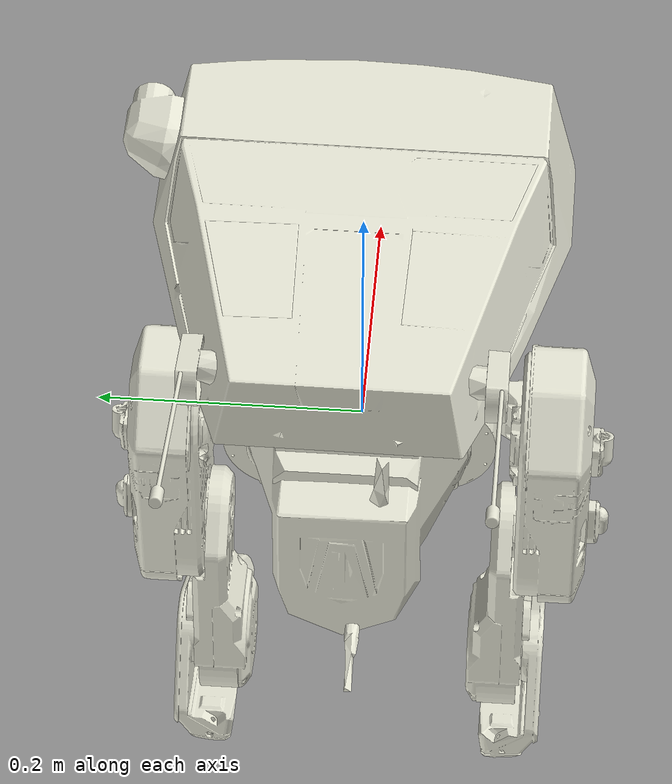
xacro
<?xml version="1.0"?>

<robot name="bdx_v4" xmlns:xacro="http://www.ros.org/wiki/xacro">
    <xacro:arg name="mesh_path" default="file://$(find robot_description)/robots/bdx_v4/mesh" />
    <xacro:include filename="bdx_v4.urdf" />
    <xacro:include filename="ros2_control_real.xacro" />

    <xacro:real_ros2_control />

</robot>

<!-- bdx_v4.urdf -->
<robot name="bdx_v4">

    <material name="black"> <color rgba="0.0 0.0 0.0 1.0"/> </material>
    <material name="white"> <color rgba="1.0 1.0 1.0 1.0"/> </material>
    <material name="red"> <color rgba="0.8 0.0 0.0 1.0"/> </material>
    <material name="yellow"> <color rgba="1.0 1.0 0.0 1.0"/> </material>
    <material name="blue"> <color rgba="0.0 0.0 0.8 1.0"/> </material>
    <material name="green"> <color rgba="0.0 0.8 0.0 1.0"/> </material>
    <material name="orange"> <color rgba="1 0.4235 0.0392 1.0"/> </material>
    <material name="silver"> <color rgba="0.9137 0.9137 0.8471 1.0"/> </material>

    <link name="trunk"/>
    <link name="base_link">
        <inertial>
            <origin xyz="-0.019956547048000001 -9.4562330000000003e-05 0.069185614313999999" rpy="0 0 0"/>
            <mass value="6.6133790757300002"/>
            <inertia ixx="0.039260766863999999" ixy="-0.00012462819199999999" ixz="0.002935471379"
                     iyy="0.081055838429999999" iyz="1.8834257999999999e-05" izz="0.070623365802999993"/>
        </inertial>
        <visual>
            <origin xyz="0 0 0" rpy="0 0 0"/>
            <geometry>
                <mesh filename="package://robot_description/robots/bdx_v4/mesh/base_link.STL"/>
            </geometry>
            <material name="silver"/>
        </visual>
        <collision>
            <origin xyz="0 0 0" rpy="0 0 0"/>
            <geometry>
                <mesh filename="package://robot_description/robots/bdx_v4/mesh/base_link.STL"/>
            </geometry>
        </collision>
    </link>
    <joint name="dummy_joint" type="fixed">
        <parent link="trunk"/>
        <child link="base_link"/>
    </joint>
    <link name="left_hip_yaw_link">
        <inertial>
            <origin xyz="-0.0013704825649999974 0.0047008836579999977 -0.053614463938000005" rpy="0 0 0"/>
            <mass value="0.72758306889699997"/>
            <inertia ixx="0.0011982664849999999" ixy="7.3257500000000001e-06" ixz="-1.7438007000000001e-05"
                     iyy="0.00087218245400000002" iyz="9.8185919999999993e-06" izz="0.00054045132699999995"/>
        </inertial>
        <visual>
            <origin xyz="0 0 0" rpy="0 0 0"/>
            <geometry>
                <mesh filename="package://robot_description/robots/bdx_v4/mesh/left_hip_yaw.STL"/>
            </geometry>
            <material name="silver"/>
        </visual>
    </link>
    <joint name="left_hip_yaw_joint" type="revolute">
        <origin xyz="-0.019800000000000002 0.048750000000000002 0.065100000000000005" rpy="0 0 0"/>
        <parent link="base_link"/>
        <child link="left_hip_yaw_link"/>
        <axis xyz="0 0 1"/>
        <limit lower="-0.349066" upper="0.349066" effort="1000" velocity="100"/>
    </joint>
    <link name="left_hip_roll_link">
        <inertial>
            <origin xyz="0.002434906132 0.031075164804000001 -4.3982000000000003e-08" rpy="0 0 0"/>
            <mass value="0.17816248602099999"/>
            <inertia ixx="0.00022406375199999999" ixy="2.7766400000000001e-06" ixz="4.0480000000000001e-09"
                     iyy="4.8951405000000001e-05" iyz="-1.227e-09" izz="0.000207381101"/>
        </inertial>
        <visual>
            <origin xyz="0 0 0" rpy="0 0 0"/>
            <geometry>
                <mesh filename="package://robot_description/robots/bdx_v4/mesh/left_hip_roll.STL"/>
            </geometry>
            <material name="silver"/>
        </visual>
    </link>
    <joint name="left_hip_roll_joint" type="revolute">
        <origin xyz="0.017800000000000003 0.0054999999999999979 -0.065100000000000005" rpy="0 0 0"/>
        <parent link="left_hip_yaw_link"/>
        <child link="left_hip_roll_link"/>
        <axis xyz="1 0 0"/>
        <limit lower="-0.698132" upper="0.261799" effort="1000" velocity="100"/>
    </joint>
    <link name="left_hip_pitch_link">
        <inertial>
            <origin xyz="-0.001943711844 0.021611905602999998 -0.05843281744" rpy="0 0 0"/>
            <mass value="1.546391155801"/>
            <inertia ixx="0.0068089450609999996" ixy="-1.4453136000000001e-05" ixz="2.7927387000000001e-05"
                     iyy="0.0077723212580000003" iyz="1.6869981000000001e-05" izz="0.0015997177419999999"/>
        </inertial>
        <visual>
            <origin xyz="0 0 0" rpy="0 0 0"/>
            <geometry>
                <mesh filename="package://robot_description/robots/bdx_v4/mesh/left_hip_pitch.STL"/>
            </geometry>
            <material name="silver"/>
        </visual>
    </link>
    <joint name="left_hip_pitch_joint" type="revolute">
        <origin xyz="0.002 0.066700000000000009 0" rpy="0 0 0"/>
        <parent link="left_hip_roll_link"/>
        <child link="left_hip_pitch_link"/>
        <axis xyz="0 1 0"/>
        <limit lower="-0.52359" upper="2.356194" effort="1000" velocity="100"/>
    </joint>
    <link name="left_knee_link">
        <inertial>
            <origin xyz="-0.0052928658590000004 -0.010948343791000001 -0.099493215772999993" rpy="0 0 0"/>
            <mass value="0.84008606801999997"/>
            <inertia ixx="0.0031077569760000002" ixy="2.4678204000000001e-05" ixz="0.00015599091799999999"
                     iyy="0.0035335563340000002" iyz="-0.000120939988" izz="0.00061717738599999998"/>
        </inertial>
        <visual>
            <origin xyz="0 0 0" rpy="0 0 0"/>
            <geometry>
                <mesh filename="package://robot_description/robots/bdx_v4/mesh/left_knee.STL"/>
            </geometry>
            <material name="silver"/>
        </visual>
        <collision>
            <origin xyz="0 0 0" rpy="0 0 0"/>
            <geometry>
                <mesh filename="package://robot_description/robots/bdx_v4/mesh/left_knee.STL"/>
            </geometry>
        </collision>
    </link>
    <joint name="left_knee_joint" type="revolute">
        <origin xyz="0 0 -0.12" rpy="0 0 0"/>
        <parent link="left_hip_pitch_link"/>
        <child link="left_knee_link"/>
        <axis xyz="0 1 0"/>
        <limit lower="-2.321287" upper="0" effort="1000" velocity="100"/>
    </joint>
    <link name="left_ankle_link">
        <inertial>
            <origin xyz="0.021285777794999999 -0.0018934604689999912 -0.037131302197999982" rpy="0 0 0"/>
            <mass value="0.42536362871400002"/>
            <inertia ixx="0.00043347552500000002" ixy="3.7516683e-05" ixz="9.9205912999999994e-05" iyy="0.001268967094"
                     iyz="-7.3035450999999995e-05" izz="0.00097118438400000003"/>
        </inertial>
        <visual>
            <origin xyz="0 0 0" rpy="0 0 0"/>
            <geometry>
                <mesh filename="package://robot_description/robots/bdx_v4/mesh/left_ankle.STL"/>
            </geometry>
            <material name="silver"/>
        </visual>
        <collision>
            <geometry>
                <mesh filename="package://robot_description/robots/bdx_v4/mesh/left_ankle.STL"/>
            </geometry>
        </collision>
    </link>
    <joint name="left_ankle_joint" type="revolute">
        <origin xyz="0 0.0083000000000000018 -0.14000000000000001" rpy="0 0 0"/>
        <parent link="left_knee_link"/>
        <child link="left_ankle_link"/>
        <axis xyz="0 1 0"/>
        <limit lower="-1.39626" upper="1.39626" effort="1000" velocity="100"/>
    </joint>
    <link name="left_foot">
        <inertial>
        <origin xyz="0 0 0" rpy="0 0 0"/>
        <mass value="1e-9"/>
        <inertia ixx="0" ixy="0" ixz="0" iyy="0" iyz="0" izz="0"/>
        </inertial>
    </link>
    <joint name="left_foot_joint" type="fixed">
        <origin xyz="0.025 0.0 -0.08" rpy="0 0 0"/>
        <parent link="left_ankle_link"/>
        <child link="left_foot"/>
        <axis xyz="0 0 0"/>
    </joint>
    <link name="right_hip_yaw_link">
        <inertial>
            <origin xyz="-0.0013603342579999976 -0.0047002975830000016 -0.053616255320000007" rpy="0 0 0"/>
            <mass value="0.72757471832700005"/>
            <inertia ixx="0.0011981470590000001" ixy="-7.198172e-06" ixz="-1.8172661999999999e-05"
                     iyy="0.00087193251399999996" iyz="-9.8259989999999994e-06" izz="0.00054025604299999996"/>
        </inertial>
        <visual>
            <origin xyz="0 0 0" rpy="0 0 0"/>
            <geometry>
                <mesh filename="package://robot_description/robots/bdx_v4/mesh/right_hip_yaw.STL"/>
            </geometry>
            <material name="silver"/>
        </visual>
    </link>
    <joint name="right_hip_yaw_joint" type="revolute">
        <origin xyz="-0.019800000000000002 -0.048750000000000002 0.065100000000000005" rpy="0 0 0"/>
        <parent link="base_link"/>
        <child link="right_hip_yaw_link"/>
        <axis xyz="0 0 1"/>
        <limit lower="-0.349066" upper="0.349066" effort="1000" velocity="100"/>
    </joint>
    <link name="right_hip_roll_link">
        <inertial>
            <origin xyz="0.0024349059750000002 -0.031075318821999993 -6.9957999999999997e-08" rpy="0 0 0"/>
            <mass value="0.17816248882999999"/>
            <inertia ixx="0.000224062441" ixy="-2.7761439999999999e-06" ixz="-4.3610000000000001e-09"
                     iyy="4.8951320999999997e-05" iyz="-5.69e-10" izz="0.00020738011399999999"/>
        </inertial>
        <visual>
            <origin xyz="0 0 0" rpy="0 0 0"/>
            <geometry>
                <mesh filename="package://robot_description/robots/bdx_v4/mesh/right_hip_roll.STL"/>
            </geometry>
            <material name="silver"/>
        </visual>
    </link>
    <joint name="right_hip_roll_joint" type="revolute">
        <origin xyz="0.0178 -0.0054999999999999979 -0.065100000000000005" rpy="0 0 0"/>
        <parent link="right_hip_yaw_link"/>
        <child link="right_hip_roll_link"/>
        <axis xyz="1 0 0"/>
        <limit lower="-0.261799" upper="0.698132" effort="1000" velocity="100"/>
    </joint>
    <link name="right_hip_pitch_link">
        <inertial>
            <origin xyz="-0.0017495255789999999 -0.021683786784999992 -0.059785911971" rpy="0 0 0"/>
            <mass value="1.508634573091"/>
            <inertia ixx="0.0065804438140000003" ixy="1.1502983999999999e-05" ixz="2.2573144999999999e-05"
                     iyy="0.0074799455270000001" iyz="-3.3984170000000002e-06" izz="0.0015198501160000001"/>
        </inertial>
        <visual>
            <origin xyz="0 0 0" rpy="0 0 0"/>
            <geometry>
                <mesh filename="package://robot_description/robots/bdx_v4/mesh/right_hip_pitch.STL"/>
            </geometry>
            <material name="silver"/>
        </visual>
    </link>
    <joint name="right_hip_pitch_joint" type="revolute">
        <origin xyz="0.002 -0.066700000000000009 0" rpy="0 0 0"/>
        <parent link="right_hip_roll_link"/>
        <child link="right_hip_pitch_link"/>
        <axis xyz="0 1 0"/>
        <limit lower="-0.52359" upper="2.356194" effort="1000" velocity="100"/>
    </joint>
    <link name="right_knee_link">
        <inertial>
            <origin xyz="-0.005292586264 0.010948402630000006 -0.099493689787000017" rpy="0 0 0"/>
            <mass value="0.84007571389500002"/>
            <inertia ixx="0.0031077264559999998" ixy="-2.4679593000000001e-05" ixz="0.00015599712700000001"
                     iyy="0.00353351394" iyz="0.000120938625" izz="0.00061717107400000005"/>
        </inertial>
        <visual>
            <origin xyz="0 0 0" rpy="0 0 0"/>
            <geometry>
                <mesh filename="package://robot_description/robots/bdx_v4/mesh/right_knee.STL"/>
            </geometry>
            <material name="silver"/>
        </visual>
        <collision>
            <origin xyz="0 0 0" rpy="0 0 0"/>
            <geometry>
                <mesh filename="package://robot_description/robots/bdx_v4/mesh/right_knee.STL"/>
            </geometry>
        </collision>
    </link>
    <joint name="right_knee_joint" type="revolute">
        <origin xyz="0 0 -0.12" rpy="0 0 0"/>
        <parent link="right_hip_pitch_link"/>
        <child link="right_knee_link"/>
        <axis xyz="0 1 0"/>
        <limit lower="-2.321287" upper="0" effort="1000" velocity="100"/>
    </joint>
    <link name="right_ankle_link">
        <inertial>
            <origin xyz="0.021197320038000001 0.0019986848659999945 -0.037122430854999999" rpy="0 0 0"/>
            <mass value="0.42488534599799999"/>
            <inertia ixx="0.000433924631" ixy="-3.7258127999999998e-05" ixz="9.7928312999999998e-05"
                     iyy="0.0012674148629999999" iyz="7.3878333999999993e-05" izz="0.00096987049100000005"/>
        </inertial>
        <visual>
            <origin xyz="0 0 0" rpy="0 0 0"/>
            <geometry>
                <mesh filename="package://robot_description/robots/bdx_v4/mesh/right_ankle.STL"/>
            </geometry>
            <material name="silver"/>
        </visual>
        <collision>
            <origin xyz="0 0 0" rpy="0 0 0"/>
            <geometry>
                <mesh filename="package://robot_description/robots/bdx_v4/mesh/right_ankle.STL"/>
            </geometry>
        </collision>
    </link>
    <joint name="right_ankle_joint" type="revolute">
        <origin xyz="0 -0.0083000000000000018 -0.14000000000000001" rpy="0 0 0"/>
        <parent link="right_knee_link"/>
        <child link="right_ankle_link"/>
        <axis xyz="0 1 0"/>
        <limit lower="-1.39626" upper="1.39626" effort="1000" velocity="100"/>
    </joint>
        <link name="right_foot">
        <inertial>
        <origin xyz="0 0 0" rpy="0 0 0"/>
        <mass value="1e-9"/>
        <inertia ixx="0" ixy="0" ixz="0" iyy="0" iyz="0" izz="0"/>
        </inertial>
    </link>
    <joint name="right_foot_joint" type="fixed">
        <origin xyz="0.025 0.0 -0.08" rpy="0 0 0"/>
        <parent link="right_ankle_link"/>
        <child link="right_foot"/>
        <axis xyz="0 0 0"/>
    </joint>
    <link name="neck_forward_link">
        <inertial>
            <origin xyz="-0.076888397088999999 0.010328186919999999 0.025215684911999992" rpy="0 0 0"/>
            <mass value="0.38277457890700001"/>
            <inertia ixx="0.00021265397800000001" ixy="0.00010316241499999999" ixz="0.00019113018000000001"
                     iyy="0.00095137714099999997" iyz="-3.2163338999999997e-05" izz="0.00093832168299999997"/>
        </inertial>
        <visual>
            <origin xyz="0 0 0" rpy="0 0 0"/>
            <geometry>
                <mesh filename="package://robot_description/robots/bdx_v4/mesh/neck_forward.STL"/>
            </geometry>
            <material name="silver"/>
        </visual>
    </link>
    <joint name="neck_forward_joint" type="revolute">
        <origin xyz="0.078200000000000006 -0.014999999999999999 0.12675" rpy="0 0 0"/>
        <parent link="base_link"/>
        <child link="neck_forward_link"/>
        <axis xyz="0 1 0"/>
        <limit lower="0" upper="1.69297" effort="1000" velocity="100"/>
    </joint>
    <link name="neck_pitch_link">
        <inertial>
            <origin xyz="-0.0079329644990000017 -0.025125774388999999 0.036720492466999988" rpy="0 0 0"/>
            <mass value="0.114367939988"/>
            <inertia ixx="0.00013656656000000001" ixy="5.0904099999999999e-07" ixz="1.3831610000000001e-05"
                     iyy="0.00012280284800000001" iyz="-2.6129910000000002e-06" izz="7.3288706000000005e-05"/>
        </inertial>
        <visual>
            <origin xyz="0 0 0" rpy="0 0 0"/>
            <geometry>
                <mesh filename="package://robot_description/robots/bdx_v4/mesh/neck_pitch.STL"/>
            </geometry>
            <material name="silver"/>
        </visual>
    </link>
    <joint name="neck_pitch_joint" type="revolute">
        <origin xyz="-0.13085017638000002 0.01529999999999995 0.033249305877000007" rpy="0 0 0"/>
        <parent link="neck_forward_link"/>
        <child link="neck_pitch_link"/>
        <axis xyz="0 1 0"/>
        <limit lower="-1.5708" upper="0" effort="1000" velocity="100"/>
    </joint>
    <link name="neck_yaw_link">
        <inertial>
            <origin xyz="0.013784319136999998 3.2433919999999474e-06 0.023272566920999993" rpy="0 0 0"/>
            <mass value="0.26127167026199999"/>
            <inertia ixx="0.000148809168" ixy="9.0984000000000003e-08" ixz="-5.272893e-06" iyy="0.000163327401"
                     iyz="3.1030000000000001e-08" izz="0.00022262619099999999"/>
        </inertial>
        <visual>
            <origin xyz="0 0 0" rpy="0 0 0"/>
            <geometry>
                <mesh filename="package://robot_description/robots/bdx_v4/mesh/neck_yaw.STL"/>
            </geometry>
            <material name="silver"/>
        </visual>
    </link>
    <joint name="neck_yaw_joint" type="revolute">
        <origin xyz="-1.8036100000312638e-07 0.000499999999999997 0.033999999998999997" rpy="0 0 0"/>
        <parent link="neck_pitch_link"/>
        <child link="neck_yaw_link"/>
        <axis xyz="0 0 1"/>
        <limit lower="-1.0472" upper="1.0472" effort="1000" velocity="100"/>
    </joint>
    <link name="neck_roll_link">
        <inertial>
            <origin xyz="-0.041045045562000004 0.0040131266840000004 0.019271782804000021" rpy="0 0 0"/>
            <mass value="1.665580908708"/>
            <inertia ixx="0.011711821107" ixy="-0.00091213401500000004" ixz="-0.00027195199800000001"
                     iyy="0.017430081654999999" iyz="-0.00017468378799999999" izz="0.027365107553"/>
        </inertial>
        <visual>
            <origin xyz="0 0 0" rpy="0 0 0"/>
            <geometry>
                <mesh filename="package://robot_description/robots/bdx_v4/mesh/neck_roll.STL"/>
            </geometry>
            <material name="silver"/>
        </visual>
        <collision>
            <origin xyz="0 0 0" rpy="0 0 0"/>
            <geometry>
                <mesh filename="package://robot_description/robots/bdx_v4/mesh/neck_roll.STL"/>
            </geometry>
        </collision>
    </link>
    <joint name="neck_roll_joint" type="revolute">
        <origin xyz="0.052749913798000002 0 0.016250279823999986" rpy="0 0 0"/>
        <parent link="neck_yaw_link"/>
        <child link="neck_roll_link"/>
        <axis xyz="1 0 0"/>
        <limit lower="-0.436332" upper="0.436332" effort="1000" velocity="100"/>
    </joint>
    <link name="left_ear_link">
        <inertial>
            <origin xyz="-0.050447081206 0.027057884695000006 0.015957557960000035" rpy="0 0 0"/>
            <mass value="0.028229970613000002"/>
            <inertia ixx="1.4040807e-05" ixy="5.590687e-06" ixz="3.2075715000000003e-05" iyy="0.00010995048"
                     iyz="-1.8955849999999999e-06" izz="9.8995915e-05"/>
        </inertial>
        <visual>
            <origin xyz="0 0 0" rpy="0 0 0"/>
            <geometry>
                <mesh filename="package://robot_description/robots/bdx_v4/mesh/left_ear.STL"/>
            </geometry>
            <material name="silver"/>
        </visual>
    </link>
    <joint name="left_ear_joint" type="fixed">
        <origin xyz="-0.187998839724 0.083299999999999999 0.026339002718999999" rpy="0 0 0"/>
        <parent link="neck_roll_link"/>
        <child link="left_ear_link"/>
        <axis xyz="0 1 0"/>
    </joint>
    <link name="right_ear_link">
        <inertial>
            <origin xyz="-0.050406020175999988 -0.027060168963000009 0.016025766692999988" rpy="0 0 0"/>
            <mass value="0.028240494080000001"/>
            <inertia ixx="1.4076728e-05" ixy="-5.5886049999999997e-06" ixz="3.2117250000000002e-05" iyy="0.000110008266"
                     iyz="1.8901379999999999e-06" izz="9.9017573000000005e-05"/>
        </inertial>
        <visual>
            <origin xyz="0 0 0" rpy="0 0 0"/>
            <geometry>
                <mesh filename="package://robot_description/robots/bdx_v4/mesh/right_ear.STL"/>
            </geometry>
            <material name="silver"/>
        </visual>
    </link>
    <joint name="right_ear_joint" type="fixed">
        <origin xyz="-0.187998839724 -0.083299999999999999 0.026339002718999999" rpy="0 0 0"/>
        <parent link="neck_roll_link"/>
        <child link="right_ear_link"/>
        <axis xyz="0 -1 0"/>
    </joint>
    <link name="imu_link"/>
    <joint name="imu_joint" type="fixed">
        <origin xyz="0 0 0" rpy="0 0 0"/>
        <parent link="base_link"/>
        <child link="imu_link"/>
        <axis xyz="0 0 0"/>
    </joint>
</robot>
